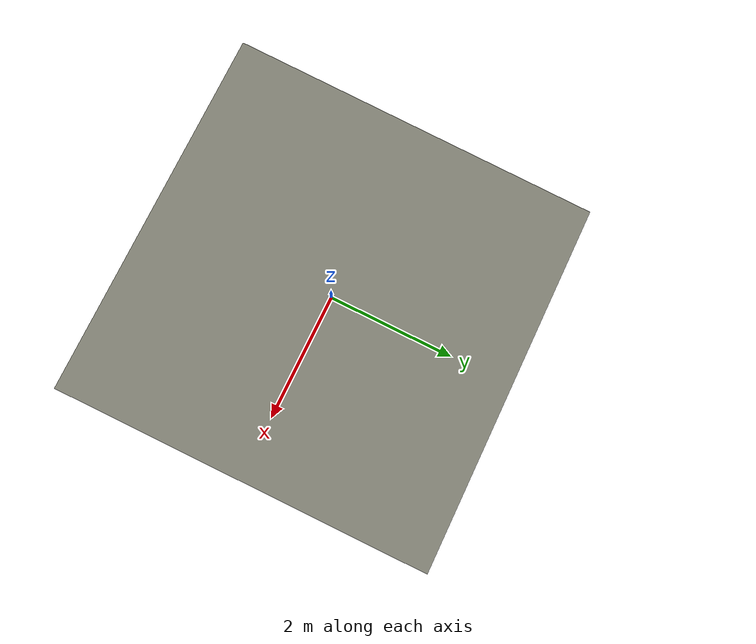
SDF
<?xml version="1.0"?>
<sdf version="1.9">
  <world name="slope">
    <physics name="1ms" type="dart">
      <max_step_size>0.001</max_step_size>
      <real_time_factor>1.0</real_time_factor>
    </physics>
    <plugin filename="gz-sim-physics-system" name="gz::sim::systems::Physics"/>
    <plugin filename="gz-sim-user-commands-system" name="gz::sim::systems::UserCommands"/>
    <plugin filename="gz-sim-scene-broadcaster-system" name="gz::sim::systems::SceneBroadcaster"/>
    <plugin filename="gz-sim-imu-system" name="gz::sim::systems::Imu"/>
    <plugin filename="gz-sim-navsat-system" name="gz::sim::systems::NavSat"/>
    <!-- the lidar and the leg ToF rays (rendering, headless with --headless-rendering) -->
    <plugin filename="gz-sim-sensors-system" name="gz::sim::systems::Sensors"><render_engine>ogre2</render_engine></plugin>
    <!-- the origin of the world on the globe, for the GNSS sensor: a park in Bucharest -->
    <spherical_coordinates>
      <surface_model>EARTH_WGS84</surface_model>
      <world_frame_orientation>ENU</world_frame_orientation>
      <latitude_deg>44.4268</latitude_deg>
      <longitude_deg>26.1025</longitude_deg>
      <elevation>80</elevation>
      <heading_deg>0</heading_deg>
    </spherical_coordinates>

    <light type="directional" name="sun">
      <cast_shadows>true</cast_shadows>
      <pose>0 0 10 0 0 0</pose>
      <diffuse>0.9 0.9 0.9 1</diffuse>
      <direction>-0.5 0.1 -0.9</direction>
    </light>

    <!-- 8 degree slope rising along +x, surface passes through the origin -->
    <model name="ground">
      <static>true</static>
      <pose>0 0 -0.05 0 -0.1396 0</pose>
      <link name="link">
        <collision name="collision">
          <geometry><box><size>6 6 0.1</size></box></geometry>
          <surface><friction><ode><mu>1.0</mu><mu2>1.0</mu2></ode></friction></surface>
        </collision>
        <visual name="visual">
          <geometry><box><size>6 6 0.1</size></box></geometry>
          <material><ambient>0.5 0.5 0.45 1</ambient><diffuse>0.5 0.5 0.45 1</diffuse></material>
        </visual>
      </link>
    </model>
  </world>
</sdf>
